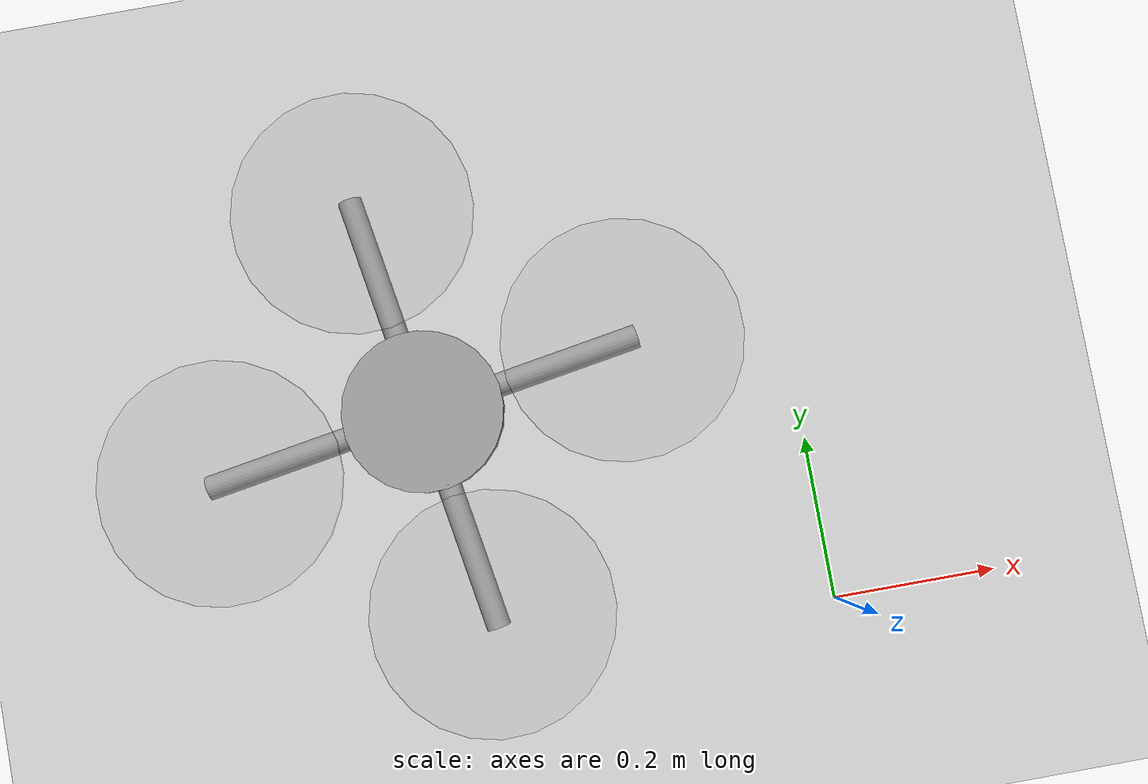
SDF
<sdf version="1.7">
 <world name="default">
  <model name="ground_plane">
   <static>1</static>
   <link name="link1">
    <collision name="collision">
     <geometry><plane><normal>0 0 1</normal><size>100 100</size></plane></geometry>
     <surface>
      <contact><collide_bitmask>65535</collide_bitmask></contact>
      <friction><ode><mu>100</mu><mu2>50</mu2></ode></friction>
     </surface>
    </collision>
    <visual name="visual">
     <cast_shadows>0</cast_shadows>
     <geometry><plane><normal>0 0 1</normal><size>100 100</size></plane></geometry>
     <material>
      <script><uri>file://media/materials/scripts/gazebo.material</uri><name>Gazebo/Grey</name></script>
     </material>
    </visual>
   </link>
  </model>
  <model name="quadrocopter_clone">
   <link name="link_0">
    <inertial>
     <mass>1.10741</mass>
     <inertia>
      <ixx>0.00285158</ixx>
      <ixy>0</ixy>
      <ixz>0</ixz>
      <iyy>0.00285158</iyy>
      <iyz>0</iyz>
      <izz>0.00553706</izz>
     </inertia>
    </inertial>
    <pose>0.00067 0.037339 -0.008889 0 -0 0</pose>
    <visual name="visual">
     <geometry><cylinder><radius>0.1</radius><length>0.03</length></cylinder></geometry>
     <material>
      <lighting>1</lighting>
      <script><uri>file://media/materials/scripts/gazebo.material</uri><name>Gazebo/Grey</name></script>
      <shader type="pixel"><normal_map>__default__</normal_map></shader>
      <ambient>0.3 0.3 0.3 1</ambient>
      <diffuse>0.7 0.7 0.7 1</diffuse>
      <specular>0.01 0.01 0.01 1</specular>
      <emissive>0 0 0 1</emissive>
     </material>
    </visual>
    <collision name="collision">
     <geometry><cylinder><radius>0.1</radius><length>0.03</length></cylinder></geometry>
     <surface>
      <friction>
       <ode><mu>1</mu><mu2>1</mu2><fdir1>0 0 0</fdir1><slip1>0</slip1><slip2>0</slip2></ode>
       <torsional>
        <coefficient>1</coefficient>
        <patch_radius>0</patch_radius>
        <surface_radius>0</surface_radius>
        <use_patch_radius>1</use_patch_radius>
        <ode><slip>0</slip></ode>
       </torsional>
      </friction>
      <bounce><restitution_coefficient>0</restitution_coefficient><threshold>1e+06</threshold></bounce>
      <contact>
       <collide_without_contact>0</collide_without_contact>
       <collide_without_contact_bitmask>1</collide_without_contact_bitmask>
       <collide_bitmask>1</collide_bitmask>
       <ode>
        <soft_cfm>0</soft_cfm>
        <soft_erp>0.2</soft_erp>
        <kp>1e+13</kp>
        <kd>1</kd>
        <max_vel>0.01</max_vel>
        <min_depth>0</min_depth>
       </ode>
       <bullet>
        <split_impulse>1</split_impulse>
        <split_impulse_penetration_threshold>-0.01</split_impulse_penetration_threshold>
        <soft_cfm>0</soft_cfm>
        <soft_erp>0.2</soft_erp>
        <kp>1e+13</kp>
        <kd>1</kd>
       </bullet>
      </contact>
     </surface>
    </collision>
   </link>
   <link name="link_0_clone">
    <inertial>
     <mass>1.10741</mass>
     <inertia>
      <ixx>0.00285158</ixx>
      <ixy>0</ixy>
      <ixz>0</ixz>
      <iyy>0.00285158</iyy>
      <iyz>0</iyz>
      <izz>0.00553706</izz>
     </inertia>
    </inertial>
    <pose>0.00067 -0.222661 0.011111 0 -0 0</pose>
    <visual name="visual">
     <geometry><cylinder><radius>0.15</radius><length>0.01</length></cylinder></geometry>
     <material>
      <lighting>1</lighting>
      <script><uri>file://media/materials/scripts/gazebo.material</uri><name>Gazebo/Grey</name></script>
      <shader type="pixel"><normal_map>__default__</normal_map></shader>
      <ambient>0.1 0.1 0.1 1</ambient>
      <diffuse>0.7 0.7 0.7 1</diffuse>
      <specular>0.01 0.01 0.01 1</specular>
      <emissive>0 0 0 1</emissive>
     </material>
     <transparency>0.9</transparency>
    </visual>
    <collision name="collision">
     <geometry><cylinder><radius>0.15</radius><length>0.01</length></cylinder></geometry>
     <surface>
      <friction>
       <ode><mu>1</mu><mu2>1</mu2><fdir1>0 0 0</fdir1><slip1>0</slip1><slip2>0</slip2></ode>
       <torsional>
        <coefficient>1</coefficient>
        <patch_radius>0</patch_radius>
        <surface_radius>0</surface_radius>
        <use_patch_radius>1</use_patch_radius>
        <ode><slip>0</slip></ode>
       </torsional>
      </friction>
      <bounce><restitution_coefficient>0</restitution_coefficient><threshold>1e+06</threshold></bounce>
      <contact>
       <collide_without_contact>0</collide_without_contact>
       <collide_without_contact_bitmask>1</collide_without_contact_bitmask>
       <collide_bitmask>1</collide_bitmask>
       <ode>
        <soft_cfm>0</soft_cfm>
        <soft_erp>0.2</soft_erp>
        <kp>1e+13</kp>
        <kd>1</kd>
        <max_vel>0.01</max_vel>
        <min_depth>0</min_depth>
       </ode>
       <bullet>
        <split_impulse>1</split_impulse>
        <split_impulse_penetration_threshold>-0.01</split_impulse_penetration_threshold>
        <soft_cfm>0</soft_cfm>
        <soft_erp>0.2</soft_erp>
        <kp>1e+13</kp>
        <kd>1</kd>
       </bullet>
      </contact>
     </surface>
    </collision>
   </link>
   <link name="link_0_clone_clone">
    <inertial>
     <mass>1.10741</mass>
     <inertia>
      <ixx>0.00285158</ixx>
      <ixy>0</ixy>
      <ixz>0</ixz>
      <iyy>0.00285158</iyy>
      <iyz>0</iyz>
      <izz>0.00553706</izz>
     </inertia>
    </inertial>
    <pose>-0.25933 0.037339 0.011111 0 -0 0</pose>
    <visual name="visual">
     <geometry><cylinder><radius>0.15</radius><length>0.01</length></cylinder></geometry>
     <material>
      <lighting>1</lighting>
      <script><uri>file://media/materials/scripts/gazebo.material</uri><name>Gazebo/Grey</name></script>
      <shader type="pixel"><normal_map>__default__</normal_map></shader>
      <ambient>0.1 0.1 0.1 1</ambient>
      <diffuse>0.7 0.7 0.7 1</diffuse>
      <specular>0.01 0.01 0.01 1</specular>
      <emissive>0 0 0 1</emissive>
     </material>
     <transparency>0.9</transparency>
    </visual>
    <collision name="collision">
     <geometry><cylinder><radius>0.15</radius><length>0.01</length></cylinder></geometry>
     <surface>
      <friction>
       <ode><mu>1</mu><mu2>1</mu2><fdir1>0 0 0</fdir1><slip1>0</slip1><slip2>0</slip2></ode>
       <torsional>
        <coefficient>1</coefficient>
        <patch_radius>0</patch_radius>
        <surface_radius>0</surface_radius>
        <use_patch_radius>1</use_patch_radius>
        <ode><slip>0</slip></ode>
       </torsional>
      </friction>
      <bounce><restitution_coefficient>0</restitution_coefficient><threshold>1e+06</threshold></bounce>
      <contact>
       <collide_without_contact>0</collide_without_contact>
       <collide_without_contact_bitmask>1</collide_without_contact_bitmask>
       <collide_bitmask>1</collide_bitmask>
       <ode>
        <soft_cfm>0</soft_cfm>
        <soft_erp>0.2</soft_erp>
        <kp>1e+13</kp>
        <kd>1</kd>
        <max_vel>0.01</max_vel>
        <min_depth>0</min_depth>
       </ode>
       <bullet>
        <split_impulse>1</split_impulse>
        <split_impulse_penetration_threshold>-0.01</split_impulse_penetration_threshold>
        <soft_cfm>0</soft_cfm>
        <soft_erp>0.2</soft_erp>
        <kp>1e+13</kp>
        <kd>1</kd>
       </bullet>
      </contact>
     </surface>
    </collision>
   </link>
   <link name="link_0_clone_clone_0">
    <inertial>
     <mass>1.10741</mass>
     <inertia>
      <ixx>0.00285158</ixx>
      <ixy>0</ixy>
      <ixz>0</ixz>
      <iyy>0.00285158</iyy>
      <iyz>0</iyz>
      <izz>0.00553706</izz>
     </inertia>
    </inertial>
    <pose>0.00067 0.297339 0.011111 0 -0 0</pose>
    <visual name="visual">
     <geometry><cylinder><radius>0.15</radius><length>0.01</length></cylinder></geometry>
     <material>
      <lighting>1</lighting>
      <script><uri>file://media/materials/scripts/gazebo.material</uri><name>Gazebo/Grey</name></script>
      <shader type="pixel"><normal_map>__default__</normal_map></shader>
      <ambient>0.1 0.1 0.1 1</ambient>
      <diffuse>0.7 0.7 0.7 1</diffuse>
      <specular>0.01 0.01 0.01 1</specular>
      <emissive>0 0 0 1</emissive>
     </material>
     <transparency>0.9</transparency>
    </visual>
    <collision name="collision">
     <geometry><cylinder><radius>0.15</radius><length>0.01</length></cylinder></geometry>
     <surface>
      <friction>
       <ode><mu>1</mu><mu2>1</mu2><fdir1>0 0 0</fdir1><slip1>0</slip1><slip2>0</slip2></ode>
       <torsional>
        <coefficient>1</coefficient>
        <patch_radius>0</patch_radius>
        <surface_radius>0</surface_radius>
        <use_patch_radius>1</use_patch_radius>
        <ode><slip>0</slip></ode>
       </torsional>
      </friction>
      <bounce><restitution_coefficient>0</restitution_coefficient><threshold>1e+06</threshold></bounce>
      <contact>
       <collide_without_contact>0</collide_without_contact>
       <collide_without_contact_bitmask>1</collide_without_contact_bitmask>
       <collide_bitmask>1</collide_bitmask>
       <ode>
        <soft_cfm>0</soft_cfm>
        <soft_erp>0.2</soft_erp>
        <kp>1e+13</kp>
        <kd>1</kd>
        <max_vel>0.01</max_vel>
        <min_depth>0</min_depth>
       </ode>
       <bullet>
        <split_impulse>1</split_impulse>
        <split_impulse_penetration_threshold>-0.01</split_impulse_penetration_threshold>
        <soft_cfm>0</soft_cfm>
        <soft_erp>0.2</soft_erp>
        <kp>1e+13</kp>
        <kd>1</kd>
       </bullet>
      </contact>
     </surface>
    </collision>
   </link>
   <link name="link_0_clone_clone_1">
    <inertial>
     <mass>1.10741</mass>
     <inertia>
      <ixx>0.00285158</ixx>
      <ixy>0</ixy>
      <ixz>0</ixz>
      <iyy>0.00285158</iyy>
      <iyz>0</iyz>
      <izz>0.00553706</izz>
     </inertia>
    </inertial>
    <pose>0.26067 0.037339 0.011111 0 -0 0</pose>
    <visual name="visual">
     <geometry><cylinder><radius>0.15</radius><length>0.01</length></cylinder></geometry>
     <material>
      <lighting>1</lighting>
      <script><uri>file://media/materials/scripts/gazebo.material</uri><name>Gazebo/Grey</name></script>
      <shader type="pixel"><normal_map>__default__</normal_map></shader>
      <ambient>0.1 0.1 0.1 1</ambient>
      <diffuse>0.7 0.7 0.7 1</diffuse>
      <specular>0.01 0.01 0.01 1</specular>
      <emissive>0 0 0 1</emissive>
     </material>
     <transparency>0.9</transparency>
    </visual>
    <collision name="collision">
     <geometry><cylinder><radius>0.15</radius><length>0.01</length></cylinder></geometry>
     <surface>
      <friction>
       <ode><mu>1</mu><mu2>1</mu2><fdir1>0 0 0</fdir1><slip1>0</slip1><slip2>0</slip2></ode>
       <torsional>
        <coefficient>1</coefficient>
        <patch_radius>0</patch_radius>
        <surface_radius>0</surface_radius>
        <use_patch_radius>1</use_patch_radius>
        <ode><slip>0</slip></ode>
       </torsional>
      </friction>
      <bounce><restitution_coefficient>0</restitution_coefficient><threshold>1e+06</threshold></bounce>
      <contact>
       <collide_without_contact>0</collide_without_contact>
       <collide_without_contact_bitmask>1</collide_without_contact_bitmask>
       <collide_bitmask>1</collide_bitmask>
       <ode>
        <soft_cfm>0</soft_cfm>
        <soft_erp>0.2</soft_erp>
        <kp>1e+13</kp>
        <kd>1</kd>
        <max_vel>0.01</max_vel>
        <min_depth>0</min_depth>
       </ode>
       <bullet>
        <split_impulse>1</split_impulse>
        <split_impulse_penetration_threshold>-0.01</split_impulse_penetration_threshold>
        <soft_cfm>0</soft_cfm>
        <soft_erp>0.2</soft_erp>
        <kp>1e+13</kp>
        <kd>1</kd>
       </bullet>
      </contact>
     </surface>
    </collision>
   </link>
   <link name="link_1">
    <inertial>
     <mass>1</mass>
     <inertia><ixx>0.145833</ixx><ixy>0</ixy><ixz>0</ixz><iyy>0.145833</iyy><iyz>0</iyz><izz>0.125</izz></inertia>
    </inertial>
    <pose>0.00067 0.217339 -0.008889 0 -0 0</pose>
    <visual name="visual">
     <pose>0 0 0 1.5708 -0 0</pose>
     <geometry><cylinder><radius>0.015</radius><length>0.2</length></cylinder></geometry>
     <material>
      <lighting>1</lighting>
      <script><uri>file://media/materials/scripts/gazebo.material</uri><name>Gazebo/Grey</name></script>
      <shader type="pixel"><normal_map>__default__</normal_map></shader>
      <ambient>0.3 0.3 0.3 1</ambient>
      <diffuse>0.7 0.7 0.7 1</diffuse>
      <specular>0.01 0.01 0.01 1</specular>
      <emissive>0 0 0 1</emissive>
     </material>
    </visual>
    <collision name="collision">
     <pose>0 0 0 1.5708 -0 0</pose>
     <geometry><cylinder><radius>0.015</radius><length>0.2</length></cylinder></geometry>
     <surface>
      <friction>
       <ode><mu>1</mu><mu2>1</mu2><fdir1>0 0 0</fdir1><slip1>0</slip1><slip2>0</slip2></ode>
       <torsional>
        <coefficient>1</coefficient>
        <patch_radius>0</patch_radius>
        <surface_radius>0</surface_radius>
        <use_patch_radius>1</use_patch_radius>
        <ode><slip>0</slip></ode>
       </torsional>
      </friction>
      <bounce><restitution_coefficient>0</restitution_coefficient><threshold>1e+06</threshold></bounce>
      <contact>
       <collide_without_contact>0</collide_without_contact>
       <collide_without_contact_bitmask>1</collide_without_contact_bitmask>
       <collide_bitmask>1</collide_bitmask>
       <ode>
        <soft_cfm>0</soft_cfm>
        <soft_erp>0.2</soft_erp>
        <kp>1e+13</kp>
        <kd>1</kd>
        <max_vel>0.01</max_vel>
        <min_depth>0</min_depth>
       </ode>
       <bullet>
        <split_impulse>1</split_impulse>
        <split_impulse_penetration_threshold>-0.01</split_impulse_penetration_threshold>
        <soft_cfm>0</soft_cfm>
        <soft_erp>0.2</soft_erp>
        <kp>1e+13</kp>
        <kd>1</kd>
       </bullet>
      </contact>
     </surface>
    </collision>
   </link>
   <link name="link_1_clone">
    <inertial>
     <mass>1</mass>
     <inertia><ixx>0.145833</ixx><ixy>0</ixy><ixz>0</ixz><iyy>0.145833</iyy><iyz>0</iyz><izz>0.125</izz></inertia>
    </inertial>
    <pose>0.00067 -0.142661 -0.008889 0 -0 0</pose>
    <visual name="visual">
     <pose>0 0 0 1.5708 -0 0</pose>
     <geometry><cylinder><radius>0.015</radius><length>0.2</length></cylinder></geometry>
     <material>
      <lighting>1</lighting>
      <script><uri>file://media/materials/scripts/gazebo.material</uri><name>Gazebo/Grey</name></script>
      <shader type="pixel"><normal_map>__default__</normal_map></shader>
      <ambient>0.3 0.3 0.3 1</ambient>
      <diffuse>0.7 0.7 0.7 1</diffuse>
      <specular>0.01 0.01 0.01 1</specular>
      <emissive>0 0 0 1</emissive>
     </material>
    </visual>
    <collision name="collision">
     <pose>0 0 0 1.5708 -0 0</pose>
     <geometry><cylinder><radius>0.015</radius><length>0.2</length></cylinder></geometry>
     <surface>
      <friction>
       <ode><mu>1</mu><mu2>1</mu2><fdir1>0 0 0</fdir1><slip1>0</slip1><slip2>0</slip2></ode>
       <torsional>
        <coefficient>1</coefficient>
        <patch_radius>0</patch_radius>
        <surface_radius>0</surface_radius>
        <use_patch_radius>1</use_patch_radius>
        <ode><slip>0</slip></ode>
       </torsional>
      </friction>
      <bounce><restitution_coefficient>0</restitution_coefficient><threshold>1e+06</threshold></bounce>
      <contact>
       <collide_without_contact>0</collide_without_contact>
       <collide_without_contact_bitmask>1</collide_without_contact_bitmask>
       <collide_bitmask>1</collide_bitmask>
       <ode>
        <soft_cfm>0</soft_cfm>
        <soft_erp>0.2</soft_erp>
        <kp>1e+13</kp>
        <kd>1</kd>
        <max_vel>0.01</max_vel>
        <min_depth>0</min_depth>
       </ode>
       <bullet>
        <split_impulse>1</split_impulse>
        <split_impulse_penetration_threshold>-0.01</split_impulse_penetration_threshold>
        <soft_cfm>0</soft_cfm>
        <soft_erp>0.2</soft_erp>
        <kp>1e+13</kp>
        <kd>1</kd>
       </bullet>
      </contact>
     </surface>
    </collision>
   </link>
   <link name="link_1_clone_clone">
    <inertial>
     <mass>1</mass>
     <inertia><ixx>0.145833</ixx><ixy>0</ixy><ixz>0</ixz><iyy>0.145833</iyy><iyz>0</iyz><izz>0.125</izz></inertia>
    </inertial>
    <pose>-0.17933 0.037339 -0.008889 0 -0 0</pose>
    <visual name="visual">
     <pose>0 0 0 1.5708 -0 1.5708</pose>
     <geometry><cylinder><radius>0.015</radius><length>0.2</length></cylinder></geometry>
     <material>
      <lighting>1</lighting>
      <script><uri>file://media/materials/scripts/gazebo.material</uri><name>Gazebo/Grey</name></script>
      <shader type="pixel"><normal_map>__default__</normal_map></shader>
      <ambient>0.3 0.3 0.3 1</ambient>
      <diffuse>0.7 0.7 0.7 1</diffuse>
      <specular>0.01 0.01 0.01 1</specular>
      <emissive>0 0 0 1</emissive>
     </material>
    </visual>
    <collision name="collision">
     <pose>0 0 0 1.5708 -0 1.5708</pose>
     <geometry><cylinder><radius>0.015</radius><length>0.2</length></cylinder></geometry>
     <surface>
      <friction>
       <ode><mu>1</mu><mu2>1</mu2><fdir1>0 0 0</fdir1><slip1>0</slip1><slip2>0</slip2></ode>
       <torsional>
        <coefficient>1</coefficient>
        <patch_radius>0</patch_radius>
        <surface_radius>0</surface_radius>
        <use_patch_radius>1</use_patch_radius>
        <ode><slip>0</slip></ode>
       </torsional>
      </friction>
      <bounce><restitution_coefficient>0</restitution_coefficient><threshold>1e+06</threshold></bounce>
      <contact>
       <collide_without_contact>0</collide_without_contact>
       <collide_without_contact_bitmask>1</collide_without_contact_bitmask>
       <collide_bitmask>1</collide_bitmask>
       <ode>
        <soft_cfm>0</soft_cfm>
        <soft_erp>0.2</soft_erp>
        <kp>1e+13</kp>
        <kd>1</kd>
        <max_vel>0.01</max_vel>
        <min_depth>0</min_depth>
       </ode>
       <bullet>
        <split_impulse>1</split_impulse>
        <split_impulse_penetration_threshold>-0.01</split_impulse_penetration_threshold>
        <soft_cfm>0</soft_cfm>
        <soft_erp>0.2</soft_erp>
        <kp>1e+13</kp>
        <kd>1</kd>
       </bullet>
      </contact>
     </surface>
    </collision>
   </link>
   <link name="link_1_clone_clone_clone">
    <inertial>
     <mass>1</mass>
     <inertia><ixx>0.145833</ixx><ixy>0</ixy><ixz>0</ixz><iyy>0.145833</iyy><iyz>0</iyz><izz>0.125</izz></inertia>
    </inertial>
    <pose>0.18067 0.037339 -0.008889 0 -0 0</pose>
    <visual name="visual">
     <pose>0 0 0 1.5708 -0 1.5708</pose>
     <geometry><cylinder><radius>0.015</radius><length>0.2</length></cylinder></geometry>
     <material>
      <lighting>1</lighting>
      <script><uri>file://media/materials/scripts/gazebo.material</uri><name>Gazebo/Grey</name></script>
      <shader type="pixel"><normal_map>__default__</normal_map></shader>
      <ambient>0.3 0.3 0.3 1</ambient>
      <diffuse>0.7 0.7 0.7 1</diffuse>
      <specular>0.01 0.01 0.01 1</specular>
      <emissive>0 0 0 1</emissive>
     </material>
    </visual>
    <collision name="collision">
     <pose>0 0 0 1.5708 -0 1.5708</pose>
     <geometry><cylinder><radius>0.015</radius><length>0.2</length></cylinder></geometry>
     <surface>
      <friction>
       <ode><mu>1</mu><mu2>1</mu2><fdir1>0 0 0</fdir1><slip1>0</slip1><slip2>0</slip2></ode>
       <torsional>
        <coefficient>1</coefficient>
        <patch_radius>0</patch_radius>
        <surface_radius>0</surface_radius>
        <use_patch_radius>1</use_patch_radius>
        <ode><slip>0</slip></ode>
       </torsional>
      </friction>
      <bounce><restitution_coefficient>0</restitution_coefficient><threshold>1e+06</threshold></bounce>
      <contact>
       <collide_without_contact>0</collide_without_contact>
       <collide_without_contact_bitmask>1</collide_without_contact_bitmask>
       <collide_bitmask>1</collide_bitmask>
       <ode>
        <soft_cfm>0</soft_cfm>
        <soft_erp>0.2</soft_erp>
        <kp>1e+13</kp>
        <kd>1</kd>
        <max_vel>0.01</max_vel>
        <min_depth>0</min_depth>
       </ode>
       <bullet>
        <split_impulse>1</split_impulse>
        <split_impulse_penetration_threshold>-0.01</split_impulse_penetration_threshold>
        <soft_cfm>0</soft_cfm>
        <soft_erp>0.2</soft_erp>
        <kp>1e+13</kp>
        <kd>1</kd>
       </bullet>
      </contact>
     </surface>
    </collision>
   </link>
   <joint name="link_0_JOINT_0" type="fixed">
    <parent>link_0</parent>
    <child>link_1</child>
    <physics>
     <ode><limit><cfm>0</cfm><erp>0.2</erp></limit><suspension><cfm>0</cfm><erp>0.2</erp></suspension></ode>
    </physics>
   </joint>
   <joint name="link_0_JOINT_1" type="fixed">
    <parent>link_0</parent>
    <child>link_1_clone</child>
    <physics>
     <ode><limit><cfm>0</cfm><erp>0.2</erp></limit><suspension><cfm>0</cfm><erp>0.2</erp></suspension></ode>
    </physics>
   </joint>
   <joint name="link_0_JOINT_2" type="fixed">
    <parent>link_0</parent>
    <child>link_1_clone_clone</child>
    <physics>
     <ode><limit><cfm>0</cfm><erp>0.2</erp></limit><suspension><cfm>0</cfm><erp>0.2</erp></suspension></ode>
    </physics>
   </joint>
   <joint name="link_0_JOINT_3" type="fixed">
    <parent>link_0</parent>
    <child>link_1_clone_clone_clone</child>
    <physics>
     <ode><limit><cfm>0</cfm><erp>0.2</erp></limit><suspension><cfm>0</cfm><erp>0.2</erp></suspension></ode>
    </physics>
   </joint>
   <joint name="link_1_JOINT_6" type="revolute">
    <parent>link_1</parent>
    <child>link_0_clone_clone_0</child>
    <axis>
     <xyz>0 0 1</xyz>
     <limit>
      <lower>-1.79769e+308</lower>
      <upper>1.79769e+308</upper>
      <effort>-1</effort>
      <velocity>-1</velocity>
     </limit>
     <dynamics>
      <spring_reference>0</spring_reference>
      <spring_stiffness>0</spring_stiffness>
      <damping>0</damping>
     </dynamics>
    </axis>
    <physics>
     <ode><limit><cfm>0</cfm><erp>0.2</erp></limit><suspension><cfm>0</cfm><erp>0.2</erp></suspension></ode>
    </physics>
   </joint>
   <joint name="link_1_clone_JOINT_4" type="revolute">
    <parent>link_1_clone</parent>
    <child>link_0_clone</child>
    <axis>
     <xyz>0 0 1</xyz>
     <limit>
      <lower>-1.79769e+308</lower>
      <upper>1.79769e+308</upper>
      <effort>-1</effort>
      <velocity>-1</velocity>
     </limit>
     <dynamics>
      <spring_reference>0</spring_reference>
      <spring_stiffness>0</spring_stiffness>
      <damping>0</damping>
     </dynamics>
    </axis>
    <physics>
     <ode><limit><cfm>0</cfm><erp>0.2</erp></limit><suspension><cfm>0</cfm><erp>0.2</erp></suspension></ode>
    </physics>
   </joint>
   <joint name="link_1_clone_clone_JOINT_7" type="revolute">
    <parent>link_1_clone_clone</parent>
    <child>link_0_clone_clone</child>
    <axis>
     <xyz>0 0 1</xyz>
     <limit>
      <lower>-1.79769e+308</lower>
      <upper>1.79769e+308</upper>
      <effort>-1</effort>
      <velocity>-1</velocity>
     </limit>
     <dynamics>
      <spring_reference>0</spring_reference>
      <spring_stiffness>0</spring_stiffness>
      <damping>0</damping>
     </dynamics>
    </axis>
    <physics>
     <ode><limit><cfm>0</cfm><erp>0.2</erp></limit><suspension><cfm>0</cfm><erp>0.2</erp></suspension></ode>
    </physics>
   </joint>
   <joint name="link_1_clone_clone_clone_JOINT_5" type="revolute">
    <parent>link_1_clone_clone_clone</parent>
    <child>link_0_clone_clone_1</child>
    <axis>
     <xyz>0 0 1</xyz>
     <limit>
      <lower>-1.79769e+308</lower>
      <upper>1.79769e+308</upper>
      <effort>-1</effort>
      <velocity>-1</velocity>
     </limit>
     <dynamics>
      <spring_reference>0</spring_reference>
      <spring_stiffness>0</spring_stiffness>
      <damping>0</damping>
     </dynamics>
    </axis>
    <physics>
     <ode><limit><cfm>0</cfm><erp>0.2</erp></limit><suspension><cfm>0</cfm><erp>0.2</erp></suspension></ode>
    </physics>
   </joint>
   <static>0</static>
   <pose>-0.455689 0.278272 0.02389 -1.1e-05 -4e-06 0.166504</pose>
  </model>
 </world>
</sdf>
